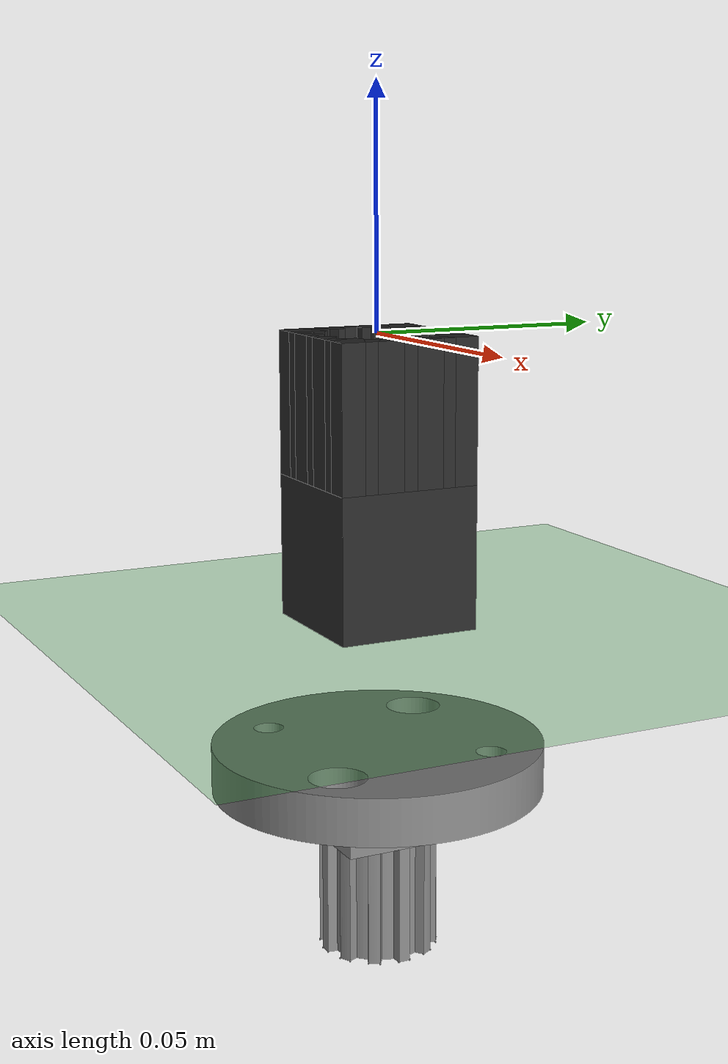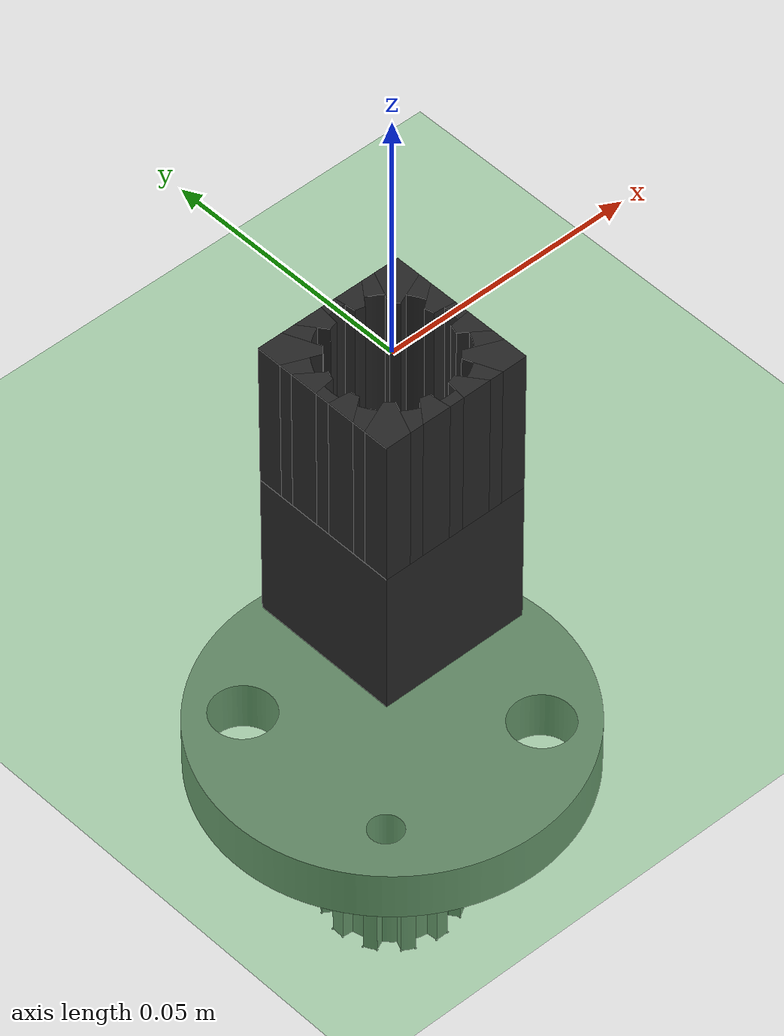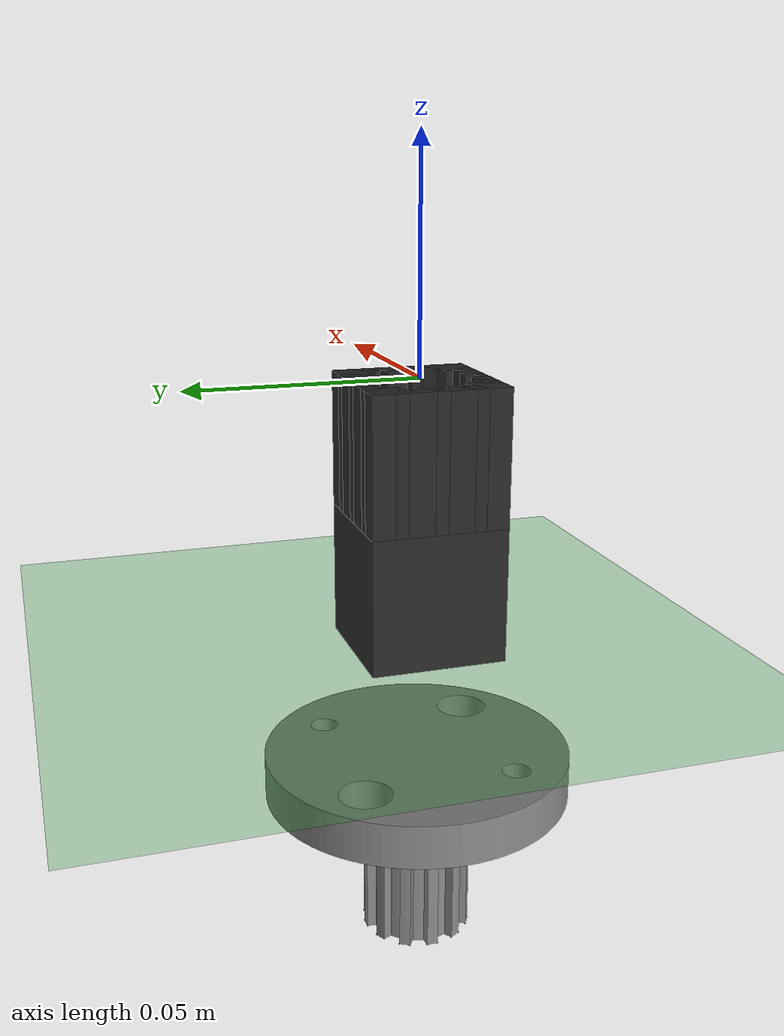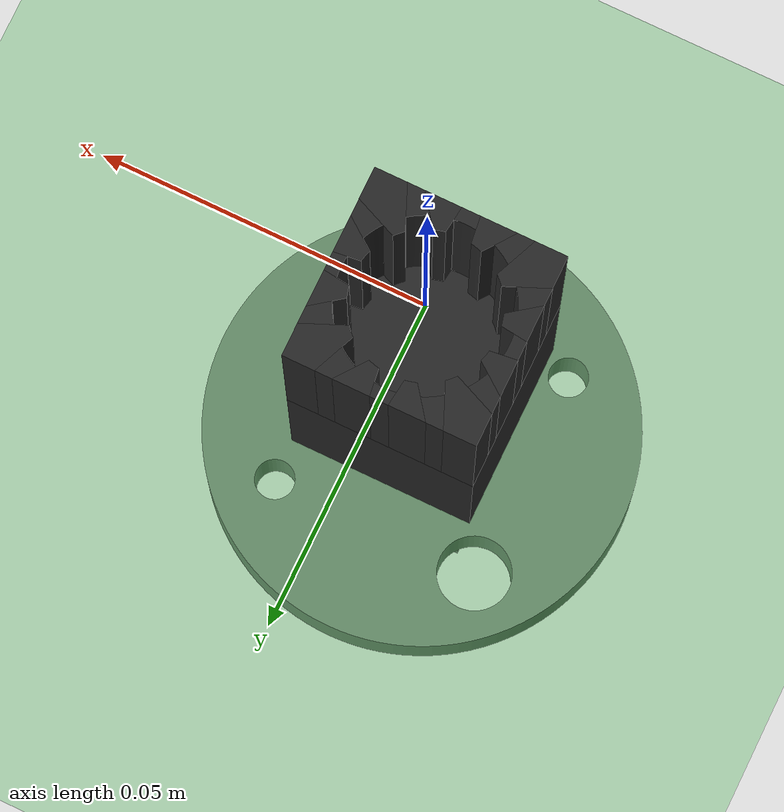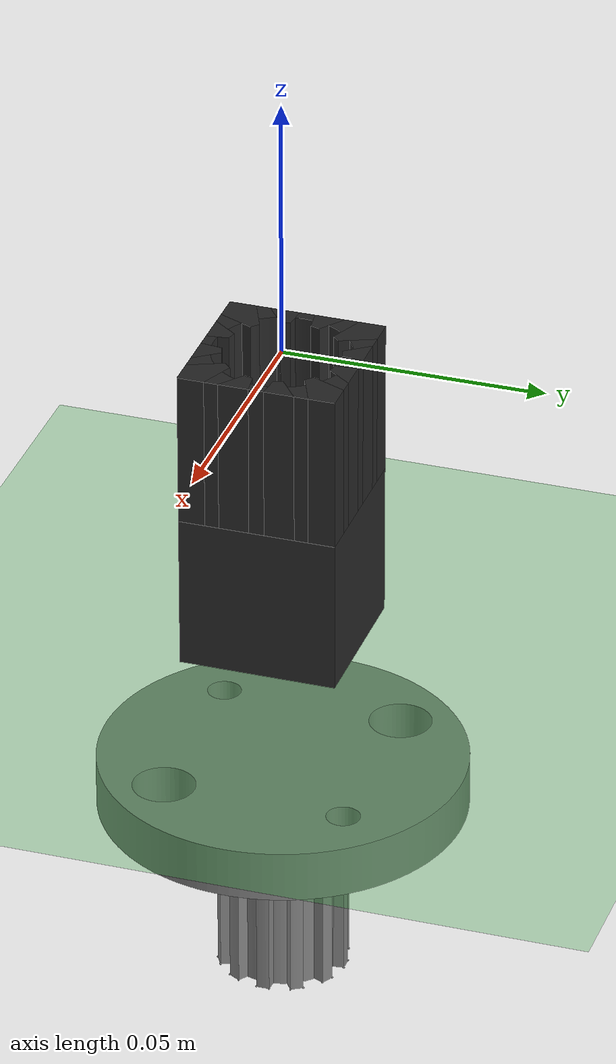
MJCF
<mujoco>
    <option timestep=".001">
        <flag energy="enable" contact="enable" override="enable"/>
    </option>

    <default>
        <default class="hole_geom">
            <geom xyaxes="1 0 0 0 1 0" rgba="0.15 0.15 0.15 1"/>
        </default>
        <site size="0.0002" />
        <geom friction="5" />
    </default>

    <visual>
        <global offwidth="960" offheight="720"/>
    </visual>

    <asset>
        <mesh name="peg1" file="../asset/gear_peg/gear_peg_decomposition/Body1.stl" />
        <mesh name="peg2" file="../asset/gear_peg/gear_peg_decomposition/Body2.stl" />
        <mesh name="peg3" file="../asset/gear_peg/gear_peg_decomposition/Body3.stl" />
        <mesh name="peg4" file="../asset/gear_peg/gear_peg_decomposition/Body4.stl" />
        <mesh name="peg5" file="../asset/gear_peg/gear_peg_decomposition/Body5.stl" />
        <mesh name="peg6" file="../asset/gear_peg/gear_peg_decomposition/Body6.stl" />
        <mesh name="peg7" file="../asset/gear_peg/gear_peg_decomposition/Body7.stl" />
        <mesh name="peg8" file="../asset/gear_peg/gear_peg_decomposition/Body8.stl" />
        <mesh name="peg9" file="../asset/gear_peg/gear_peg_decomposition/Body9.stl" />
        <mesh name="peg10" file="../asset/gear_peg/gear_peg_decomposition/Body10.stl" />
        <mesh name="peg11" file="../asset/gear_peg/gear_peg_decomposition/Body11.stl" />
        <mesh name="peg12" file="../asset/gear_peg/gear_peg_decomposition/Body12.stl" />
        <mesh name="peg13" file="../asset/gear_peg/gear_peg_decomposition/Body13.stl" />
        <mesh name="peg14" file="../asset/gear_peg/gear_peg_decomposition/Body14.stl" />
        <mesh name="peg15" file="../asset/gear_peg/gear_peg_decomposition/Body15.stl" />
        <mesh name="peg16" file="../asset/gear_peg/gear_peg_decomposition/Body16.stl" />
        <mesh name="peg17" file="../asset/gear_peg/gear_peg_decomposition/Body17.stl" />
        <mesh name="peg18" file="../asset/gear_peg/gear_peg_decomposition/Body18.stl" />
        <mesh name="peg19" file="../asset/gear_peg/gear_peg_decomposition/Body19.stl" />
        <mesh name="peg20" file="../asset/gear_peg/gear_peg_decomposition/Body20.stl" />
        <mesh name="peg21" file="../asset/gear_peg/gear_peg_decomposition/Body21.stl" />
        <mesh name="peg22" file="../asset/gear_peg/gear_peg_decomposition/Body22.stl" />
        <mesh name="peg23" file="../asset/gear_peg/gear_peg_decomposition/Body23.stl" />
        <mesh name="peg24" file="../asset/gear_peg/gear_peg_decomposition/Body24.stl" />
        <mesh name="peg25" file="../asset/gear_peg/gear_peg_decomposition/Body25.stl" />
        <mesh name="peg26" file="../asset/gear_peg/gear_peg_decomposition/Body26.stl" />
        <mesh name="peg27" file="../asset/gear_peg/gear_peg_decomposition/Body27.stl" />
        <mesh name="peg28" file="../asset/gear_peg/gear_peg_decomposition/Body28.stl" />
        <mesh name="peg29" file="../asset/gear_peg/gear_peg_decomposition/Body29.stl" />
        <mesh name="peg30" file="../asset/gear_peg/gear_peg_decomposition/Body30.stl" />
        <mesh name="peg31" file="../asset/gear_peg/gear_peg_decomposition/Body31.stl" />
        <mesh name="peg32" file="../asset/gear_peg/gear_peg_decomposition/Body32.stl" />
        <mesh name="peg33" file="../asset/gear_peg/gear_peg_decomposition/Body33.stl" />
        <mesh name="peg34" file="../asset/gear_peg/gear_peg_decomposition/Body34.stl" />
        <mesh name="peg35" file="../asset/gear_peg/gear_peg_decomposition/Body35.stl" />
        <mesh name="peg36" file="../asset/gear_peg/gear_peg_decomposition/Body36.stl" />
        <mesh name="peg37" file="../asset/gear_peg/gear_peg_decomposition/Body37.stl" />
        <mesh name="peg38" file="../asset/gear_peg/gear_peg_decomposition/Body38.stl" />
        <mesh name="peg39" file="../asset/gear_peg/gear_peg_decomposition/Body39.stl" />

        <mesh name="hole1" file="../asset/gear_peg/gear_hole_decomposition/Body1.stl" />
        <mesh name="hole2" file="../asset/gear_peg/gear_hole_decomposition/Body3.stl" />
        <mesh name="hole3" file="../asset/gear_peg/gear_hole_decomposition/Body4.stl" />
        <mesh name="hole4" file="../asset/gear_peg/gear_hole_decomposition/Body6.stl" />
        <mesh name="hole5" file="../asset/gear_peg/gear_hole_decomposition/Body7.stl" />
        <mesh name="hole6" file="../asset/gear_peg/gear_hole_decomposition/Body9.stl" />
        <mesh name="hole7" file="../asset/gear_peg/gear_hole_decomposition/Body10.stl" />
        <mesh name="hole8" file="../asset/gear_peg/gear_hole_decomposition/Body11.stl" />
        <mesh name="hole9" file="../asset/gear_peg/gear_hole_decomposition/Body12.stl" />
        <mesh name="hole10" file="../asset/gear_peg/gear_hole_decomposition/Body13.stl" />
        <mesh name="hole11" file="../asset/gear_peg/gear_hole_decomposition/Body14.stl" />
        <mesh name="hole12" file="../asset/gear_peg/gear_hole_decomposition/Body15.stl" />
        <mesh name="hole13" file="../asset/gear_peg/gear_hole_decomposition/Body16.stl" />
        <mesh name="hole14" file="../asset/gear_peg/gear_hole_decomposition/Body17.stl" />
        <mesh name="hole15" file="../asset/gear_peg/gear_hole_decomposition/Body18.stl" />
        <mesh name="hole16" file="../asset/gear_peg/gear_hole_decomposition/Body19.stl" />
        <mesh name="hole17" file="../asset/gear_peg/gear_hole_decomposition/Body20.stl" />
        <mesh name="hole18" file="../asset/gear_peg/gear_hole_decomposition/Body21.stl" />
        <mesh name="hole19" file="../asset/gear_peg/gear_hole_decomposition/Body22.stl" />
        <mesh name="hole20" file="../asset/gear_peg/gear_hole_decomposition/Body23.stl" />
        <mesh name="hole21" file="../asset/gear_peg/gear_hole_decomposition/Body24.stl" />
        <mesh name="hole22" file="../asset/gear_peg/gear_hole_decomposition/Body25.stl" />
        <mesh name="hole23" file="../asset/gear_peg/gear_hole_decomposition/Body26.stl" />
        <mesh name="hole24" file="../asset/gear_peg/gear_hole_decomposition/Body27.stl" />
        <mesh name="hole25" file="../asset/gear_peg/gear_hole_decomposition/Body28.stl" />

        <texture name="grid" type="2d" file="../asset/green_tex.png" />
        <material name="grid" texture="grid" texrepeat="6 6" texuniform="true" reflectance="0.0" />
    </asset>

    <worldbody>
        <site name="world" pos="0 0 0" size="0.0001" />
        <light name="top-light" pos="0.1 -.2 0.8" mode="targetbodycom" target="peg"
            castshadow="false" ambient=".4 .4 .4" />

        <geom name="ground" type="plane" pos="0 0 -0.060" size="1 1 0.01" material="grid"
            friction=".1" />

        <body name="hole" pos="0 0 -0.030">
            <inertial pos="0 0 0" mass="0.1" diaginertia="0.1 0.1 0.1" />

            <geom type="mesh" mesh="hole1" class="hole_geom"/>
            <geom type="mesh" mesh="hole2" class="hole_geom"/>
            <geom type="mesh" mesh="hole3" class="hole_geom"/>
            <geom type="mesh" mesh="hole4" class="hole_geom"/>
            <geom type="mesh" mesh="hole5" class="hole_geom"/>
            <geom type="mesh" mesh="hole6" class="hole_geom"/>
            <geom type="mesh" mesh="hole7" class="hole_geom"/>
            <geom type="mesh" mesh="hole8" class="hole_geom"/>
            <geom type="mesh" mesh="hole9" class="hole_geom"/>
            <geom type="mesh" mesh="hole10" class="hole_geom" />
            <geom type="mesh" mesh="hole11" class="hole_geom" />
            <geom type="mesh" mesh="hole12" class="hole_geom" />
            <geom type="mesh" mesh="hole13" class="hole_geom" />
            <geom type="mesh" mesh="hole14" class="hole_geom" />
            <geom type="mesh" mesh="hole15" class="hole_geom" />
            <geom type="mesh" mesh="hole16" class="hole_geom" />
            <geom type="mesh" mesh="hole17" class="hole_geom" />
            <geom type="mesh" mesh="hole18" class="hole_geom" />
            <geom type="mesh" mesh="hole19" class="hole_geom" />
            <geom type="mesh" mesh="hole20" class="hole_geom" />
            <geom type="mesh" mesh="hole21" class="hole_geom" />
            <geom type="mesh" mesh="hole22" class="hole_geom" />
            <geom type="mesh" mesh="hole23" class="hole_geom" />
            <geom type="mesh" mesh="hole24" class="hole_geom" />
            <geom type="mesh" mesh="hole25" class="hole_geom" />

        </body>

        <body name="flage" pos="0 0 0">

            <site name="peg/external/motor" pos="0 0 0" />

            <camera name="track" mode="track" pos="-0.03 0.0575 -0.098" euler="-60 -30 180" fovy="69.4"/>

            <joint name="trans_x" type="slide" axis="1 0 0" limited="false"/>
            <joint name="trans_y" type="slide" axis="0 1 0" limited="false"/>
            <joint name="trans_z" type="slide" axis="0 0 1" limited="false"/>
            <joint name="hinge_x" type="hinge" axis="1 0 0" limited="false"/>
            <joint name="hinge_y" type="hinge" axis="0 1 0" limited="false"/>
            <joint name="hinge_z" type="hinge" axis="0 0 1" limited="false"/>

            <body name="peg" pos="0 0 -0.0958">

                <inertial pos="-0.00665 0.00795 0.08289" mass="1.41" diaginertia="0.1 0.1 0.1" />

                <site name="peg/origin" pos="0 0 0" />
                <site name="peg/peg" pos="0 0 -0.01" />
                <site name="peg/tip" pos="0 0 -0.035" />

                <site name="peg/peg_bottom_1" pos="0.01244 0.00125 -0.035" />
                <site name="peg/peg_bottom_2" pos="0.0114 0.00514 -0.035" />
                <site name="peg/peg_bottom_3" pos="0.01015 0.0073 -0.035" />
                <site name="peg/peg_bottom_4" pos="0.0073 0.01015 -0.035" />
                <site name="peg/peg_bottom_5" pos="0.00514 0.0114 -0.035" />
                <site name="peg/peg_bottom_6" pos="0.00125 0.01244 -0.035" />
                <site name="peg/peg_bottom_7" pos="-0.00125 0.01244 -0.035" />
                <site name="peg/peg_bottom_8" pos="-0.00514 0.0114 -0.035" />
                <site name="peg/peg_bottom_9" pos="-0.0073 0.01015 -0.035" />
                <site name="peg/peg_bottom_10" pos="-0.01015 0.0073 -0.035" />
                <site name="peg/peg_bottom_11" pos="-0.0114 0.00514 -0.035" />
                <site name="peg/peg_bottom_12" pos="-0.01244 0.00125 -0.035" />
                <site name="peg/peg_bottom_13" pos="-0.01244 -0.00125 -0.035" />
                <site name="peg/peg_bottom_14" pos="-0.0114 -0.00514 -0.035" />
                <site name="peg/peg_bottom_15" pos="-0.01015 -0.0073 -0.035" />
                <site name="peg/peg_bottom_16" pos="-0.0073 -0.01015 -0.035" />
                <site name="peg/peg_bottom_17" pos="-0.00514 -0.0114 -0.035" />
                <site name="peg/peg_bottom_18" pos="-0.00125 -0.01244 -0.035" />
                <site name="peg/peg_bottom_19" pos="0.00125 -0.01244 -0.035" />
                <site name="peg/peg_bottom_20" pos="0.00514 -0.0114 -0.035" />
                <site name="peg/peg_bottom_21" pos="0.0073 -0.01015 -0.035" />
                <site name="peg/peg_bottom_22" pos="0.01015 -0.0073 -0.035" />
                <site name="peg/peg_bottom_23" pos="0.0114 -0.00514 -0.035" />
                <site name="peg/peg_bottom_24" pos="0.01244 -0.00125 -0.035" />

                <geom type="mesh" mesh="peg1" xyaxes="1 0 0 0 -1 0" />
                <geom type="mesh" mesh="peg2" xyaxes="1 0 0 0 -1 0" />
                <geom type="mesh" mesh="peg3" xyaxes="1 0 0 0 -1 0" />
                <geom type="mesh" mesh="peg4" xyaxes="1 0 0 0 -1 0" />
                <geom type="mesh" mesh="peg5" xyaxes="1 0 0 0 -1 0" />
                <geom type="mesh" mesh="peg6" xyaxes="1 0 0 0 -1 0" />
                <geom type="mesh" mesh="peg7" xyaxes="1 0 0 0 -1 0" />
                <geom type="mesh" mesh="peg8" xyaxes="1 0 0 0 -1 0" />
                <geom type="mesh" mesh="peg9" xyaxes="1 0 0 0 -1 0" />
                <geom type="mesh" mesh="peg10" xyaxes="1 0 0 0 -1 0" />
                <geom type="mesh" mesh="peg11" xyaxes="1 0 0 0 -1 0" />
                <geom type="mesh" mesh="peg12" xyaxes="1 0 0 0 -1 0" />
                <geom type="mesh" mesh="peg13" xyaxes="1 0 0 0 -1 0" />
                <geom type="mesh" mesh="peg14" xyaxes="1 0 0 0 -1 0" />
                <geom type="mesh" mesh="peg15" xyaxes="1 0 0 0 -1 0" />
                <geom type="mesh" mesh="peg16" xyaxes="1 0 0 0 -1 0" />
                <geom type="mesh" mesh="peg17" xyaxes="1 0 0 0 -1 0" />
                <geom type="mesh" mesh="peg18" xyaxes="1 0 0 0 -1 0" />
                <geom type="mesh" mesh="peg19" xyaxes="1 0 0 0 -1 0" />
                <geom type="mesh" mesh="peg20" xyaxes="1 0 0 0 -1 0" />
                <geom type="mesh" mesh="peg21" xyaxes="1 0 0 0 -1 0" />
                <geom type="mesh" mesh="peg22" xyaxes="1 0 0 0 -1 0" />
                <geom type="mesh" mesh="peg23" xyaxes="1 0 0 0 -1 0" />
                <geom type="mesh" mesh="peg24" xyaxes="1 0 0 0 -1 0" />
                <geom type="mesh" mesh="peg25" xyaxes="1 0 0 0 -1 0" />
                <geom type="mesh" mesh="peg26" xyaxes="1 0 0 0 -1 0" />
                <geom type="mesh" mesh="peg27" xyaxes="1 0 0 0 -1 0" />
                <geom type="mesh" mesh="peg28" xyaxes="1 0 0 0 -1 0" />
                <geom type="mesh" mesh="peg29" xyaxes="1 0 0 0 -1 0" />
                <geom type="mesh" mesh="peg30" xyaxes="1 0 0 0 -1 0" />
                <geom type="mesh" mesh="peg31" xyaxes="1 0 0 0 -1 0" />
                <geom type="mesh" mesh="peg32" xyaxes="1 0 0 0 -1 0" />
                <geom type="mesh" mesh="peg33" xyaxes="1 0 0 0 -1 0" />
                <geom type="mesh" mesh="peg34" xyaxes="1 0 0 0 -1 0" />
                <geom type="mesh" mesh="peg35" xyaxes="1 0 0 0 -1 0" />
                <geom type="mesh" mesh="peg36" xyaxes="1 0 0 0 -1 0" />
                <geom type="mesh" mesh="peg37" xyaxes="1 0 0 0 -1 0" />
                <geom type="mesh" mesh="peg38" xyaxes="1 0 0 0 -1 0" />
                <geom type="mesh" mesh="peg39" xyaxes="1 0 0 0 -1 0" />
            </body>
        </body>

    </worldbody>

    <custom>
        <numeric name="sites_on_peg_bottom" data="24"/>
    </custom>

    <actuator>
        <position name="x" forcelimited="true" forcerange="-20 20" joint="trans_x" kp="3000" kv="50" />
        <position name="y" forcelimited="true" forcerange="-20 20" joint="trans_y" kp="3000" kv="50" />
        <position name="z" forcelimited="true" forcerange="-20 20" joint="trans_z" kp="3000" kv="50" />
        <position name="rx" forcelimited="true" forcerange="-5 5" joint="hinge_x" kp="50" kv="5" />
        <position name="ry" forcelimited="true" forcerange="-5 5" joint="hinge_y" kp="50" kv="5"/>
        <position name="rz" forcelimited="true" forcerange="-5 5" joint="hinge_z" kp="50" kv="5"/>
    </actuator>

    <sensor>
        <force name="force_sensor" site="peg/external/motor" />
        <torque name="torque_sensor" site="peg/external/motor" />
        <framepos name="peg_pos" objtype="site" objname="peg/peg"/>
        <framequat name="peg_quat" objtype="site" objname="peg/peg"/>
    </sensor>
</mujoco>
